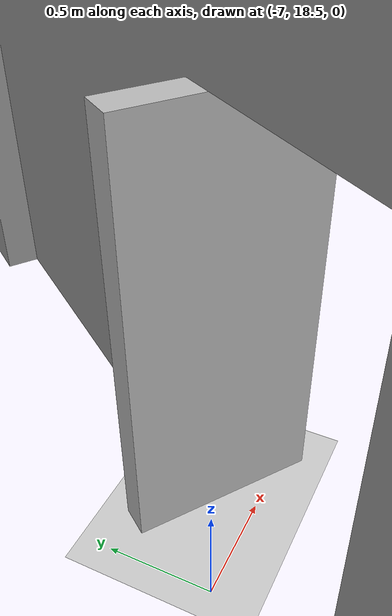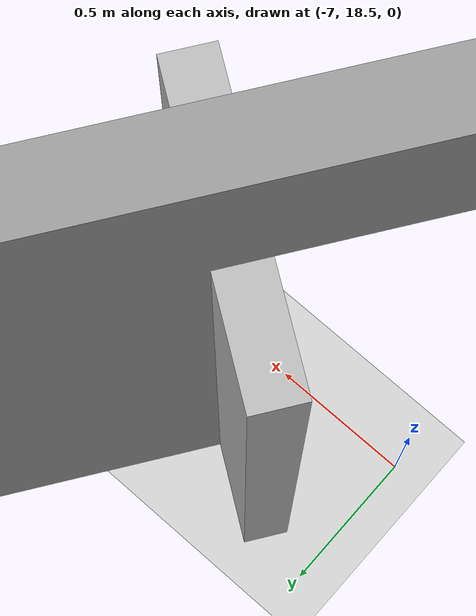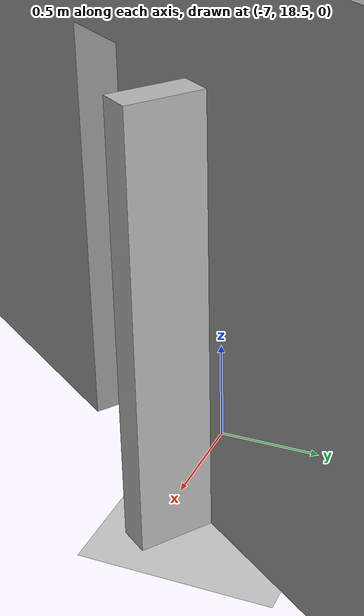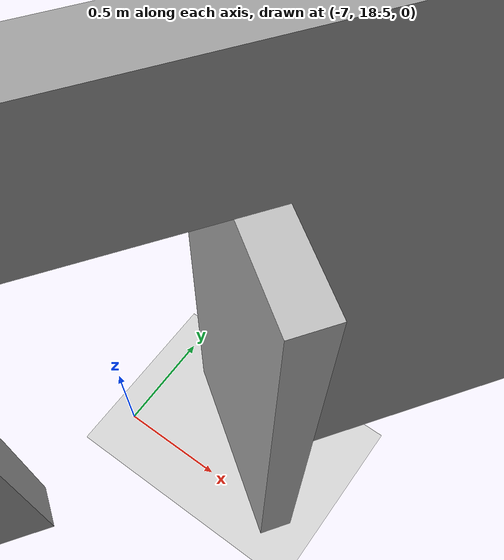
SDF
<?xml version='1.0' encoding='utf-8'?>
<sdf version="1.6">
  <world name="floorplan:brsu_building_c_with_doorways_with_objects">
    <gravity>0 0 -9.8</gravity>
    <physics default="0" name="default_physics" type="ode">
      <max_step_size>0.001</max_step_size>
      <real_time_factor>1</real_time_factor>
      <real_time_update_rate>1000</real_time_update_rate>
    </physics>
    <scene>
      <ambient>0.6 0.6 0.6 1</ambient>
      <background>0.4 0.4 0.4 1</background>
      <shadows>false</shadows>
    </scene>
    <include>
      <uri>model://sun</uri>
    </include>
    <include>
      <uri>model://ground_plane</uri>
      <pose>0 0 0 0 0 0</pose>
    </include>
    <include>
      <uri>model://brsu_building_c_with_doorways</uri>
      <static>true</static>
      <pose>-0.0 0.0 0.0 0.0 0.0 0.0</pose>
    </include>

    <include>
      <name>door-instance-1</name>
      <uri>model://door</uri>
      <static>false</static>
      <pose>-6.456217554968435 18.71830066760649 0.0 0.0 -0.0 2.5307274153917776</pose>

    </include>

  </world>
</sdf>

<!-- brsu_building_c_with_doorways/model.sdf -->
<sdf version="1.6">
  <model name="brsu_building_c_with_doorways">
    <link name="link">
      <visual name="visual">
        <geometry>
          <mesh>
            <uri>file://brsu_building_c_with_doorways.stl</uri>
          </mesh>
        </geometry>
        <material>
          <script>
            <uri>file://media/materials/scripts/gazebo.material</uri>
            <name>Gazebo/Grey</name>
          </script>
        </material>
      </visual>
      <collision name="collision">
        <geometry>
          <mesh>
            <uri>file://brsu_building_c_with_doorways.stl</uri>
          </mesh>
        </geometry>
      </collision>
    </link>
    <static>1</static>
  </model>
</sdf>

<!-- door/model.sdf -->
<sdf version='1.6'>
  <model name='door'>
    <link name='link_0'>
         <visual name='visual'>
        <pose frame=''>0 0 1 0 -0 0</pose>
        <geometry>
          <box>
            <size>0.9 0.15 2</size>
          </box>
        </geometry>
          	<material>
          <script>
            <uri>model://door/materials/scripts</uri>
            <uri>model://door/materials/textures</uri>
            <name>door</name>
          </script>
        </material>
        <cast_shadows>1</cast_shadows>
        <transparency>0</transparency>
      </visual>
      <collision name='collision'>
        <laser_retro>0</laser_retro>
        <max_contacts>10</max_contacts>
        <pose frame=''>0 0 1 0 -0 0</pose>
        <geometry>
          <box>
            <size>0.9 0.15 2</size>
          </box>
        </geometry>

      </collision>
    </link>
    <static>1</static>
    <allow_auto_disable>1</allow_auto_disable>
  </model>
</sdf>
